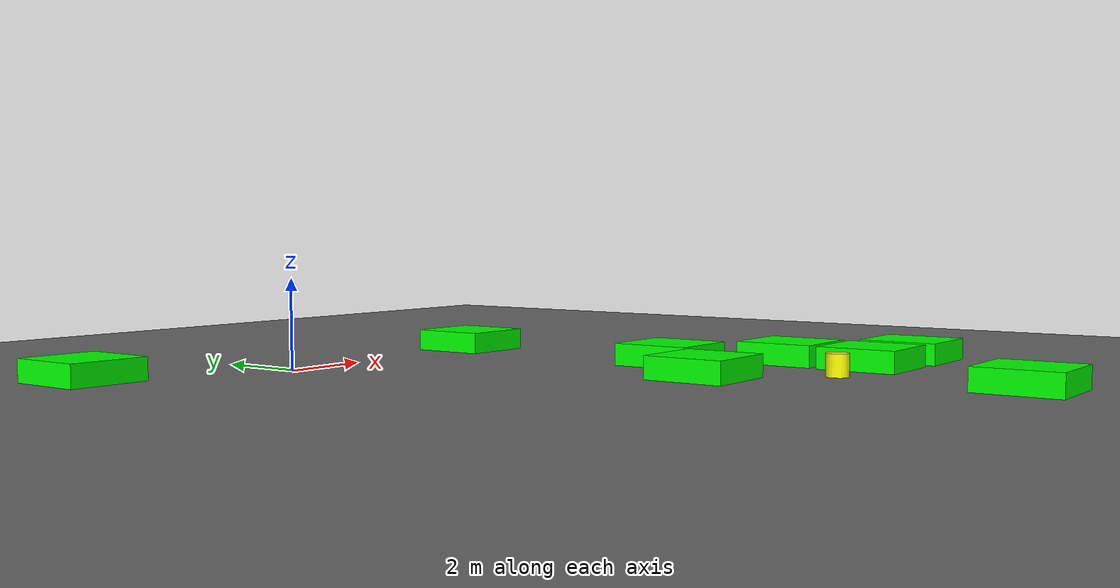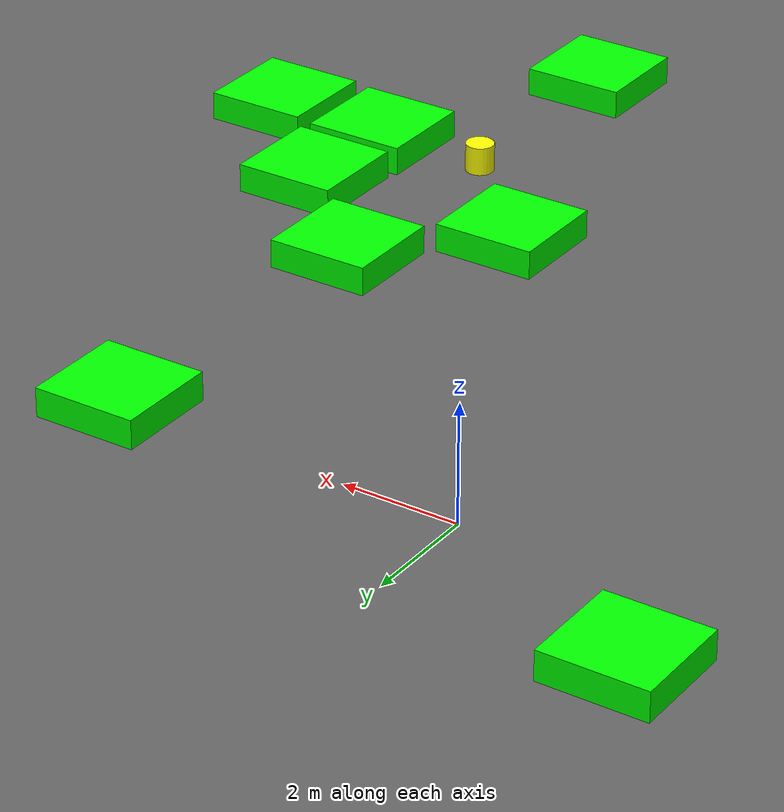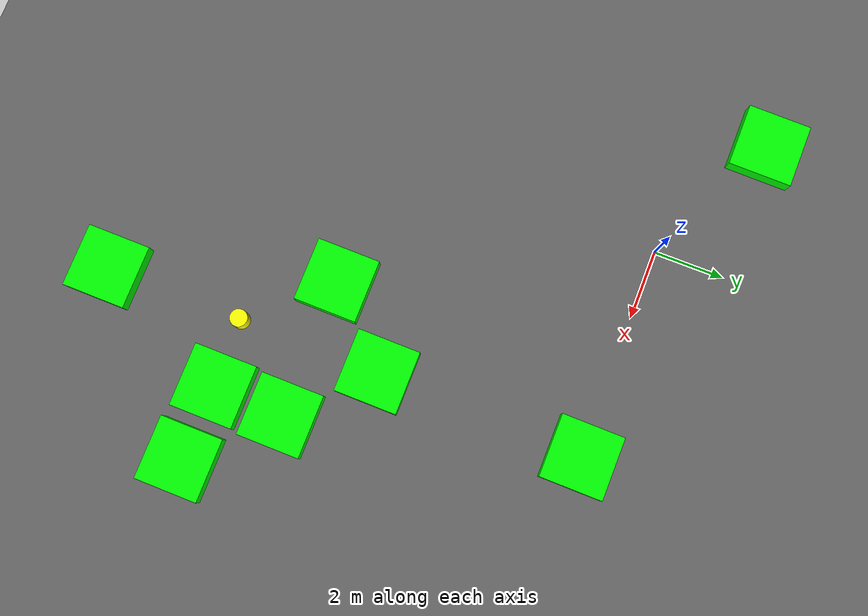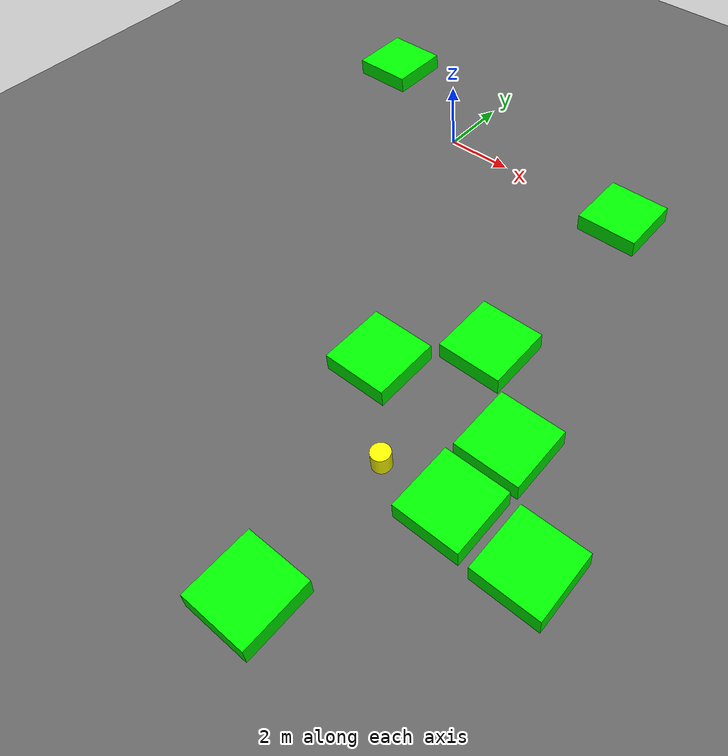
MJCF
<mujoco model="lvl4_standard_obs8_d2mid_seed2031">
    <compiler angle="degree" coordinate="local" inertiafromgeom="true"/>
    <option integrator="RK4" timestep="0.01"/>

    <asset>
        <texture builtin="gradient" height="100" rgb1="0.6 0.8 1" rgb2="0 0 0" type="skybox" width="100"/>
        <texture name="floor_texture" type="2d" builtin="checker" width="100" height="100" rgb1="0 0 0" rgb2="0.8 0.8 0.8"/>
        <material name="MatPlane" reflectance="0.5" shininess="1" specular="1" texrepeat="10 10" texture="floor_texture"/>
    </asset>

    <!-- Excluding the contact between the agent and the goal, and the agent and the floor -->
    <contact>
        <exclude body1="agent" body2="goal"/>
        <exclude body1 = "agent" body2 = "floor"/>
    </contact>

    <extension>
        <plugin plugin = "mujoco.pid">
            <instance name = "pid1">
                <config key="kp" value="2"/>
                <config key="ki" value="0"/>
                <config key="kd" value="55"/>
            </instance>
        </plugin>
    </extension>

    <worldbody>
        <light cutoff="100" diffuse="1 1 1" dir="-0 0 -1.3" directional="true" exponent="1" pos="0 0 1.3" specular=".1 .1 .1"/>
        <body name="floor" pos="0 0 0">
            <geom name="floor_geom" type="plane" size="20 20 0.1" material="MatPlane"/>
        </body>

                <body name="goal" pos="0.0000 0.0000 0">
            <geom name="goal_geom" type="plane" size="0.5 0.5 1" pos="0 0 0" rgba="1 0 0 1"/>
        </body>

                <body name="agent" pos="6.0000 -10.0000 0.250">
            <joint name="j1" type="slide" axis ="1 0 0 "/>
            <joint name="j2" type="slide" axis ="0 1 0 "/>
            <geom name="agent_geom" type="cylinder" size="0.25 0.25 0.250" rgba="1 1 0 1"/>
        </body>

        <body name="obstacle1" pos="-3.9152 1.9182 0.250">  <geom name="obstacle1_geom" type="box" size="0.9000 0.9000 0.250" rgba="0 1 0 1"/></body>
        <body name="obstacle2" pos="6.0884 0.0267 0.250">  <geom name="obstacle2_geom" type="box" size="0.9000 0.9000 0.250" rgba="0 1 0 1"/></body>
        <body name="obstacle3" pos="5.9715 -5.9404 0.250">  <geom name="obstacle3_geom" type="box" size="0.9000 0.9000 0.250" rgba="0 1 0 1"/></body>
        <body name="obstacle4" pos="4.0501 -7.9072 0.250">  <geom name="obstacle4_geom" type="box" size="0.9000 0.9000 0.250" rgba="0 1 0 1"/></body>
        <body name="obstacle5" pos="8.0167 -7.9293 0.250">  <geom name="obstacle5_geom" type="box" size="0.9000 0.9000 0.250" rgba="0 1 0 1"/></body>
        <body name="obstacle6" pos="7.9505 -9.9182 0.250">  <geom name="obstacle6_geom" type="box" size="0.9000 0.9000 0.250" rgba="0 1 0 1"/></body>
        <body name="obstacle7" pos="10.0842 -10.0068 0.250">  <geom name="obstacle7_geom" type="box" size="0.9000 0.9000 0.250" rgba="0 1 0 1"/></body>
        <body name="obstacle8" pos="6.0071 -13.9553 0.250">  <geom name="obstacle8_geom" type="box" size="0.9000 0.9000 0.250" rgba="0 1 0 1"/></body>

    </worldbody>

    <sensor>
<!-- SENSORS -->

        <distance name="dist1" geom1="agent_geom" geom2="obstacle1_geom" cutoff="1.5"/>
        <distance name="dist2" geom1="agent_geom" geom2="obstacle2_geom" cutoff="1.5"/>
        <distance name="dist3" geom1="agent_geom" geom2="obstacle3_geom" cutoff="1.5"/>
        <distance name="dist4" geom1="agent_geom" geom2="obstacle4_geom" cutoff="1.5"/>
        <distance name="dist5" geom1="agent_geom" geom2="obstacle5_geom" cutoff="1.5"/>
        <distance name="dist6" geom1="agent_geom" geom2="obstacle6_geom" cutoff="1.5"/>
        <distance name="dist7" geom1="agent_geom" geom2="obstacle7_geom" cutoff="1.5"/>
        <distance name="dist8" geom1="agent_geom" geom2="obstacle8_geom" cutoff="1.5"/>
</sensor>

    <actuator>
        <plugin joint="j1" plugin="mujoco.pid" instance="pid1" />
        <plugin joint="j2" plugin="mujoco.pid" instance="pid1"/>
    </actuator>
</mujoco>
